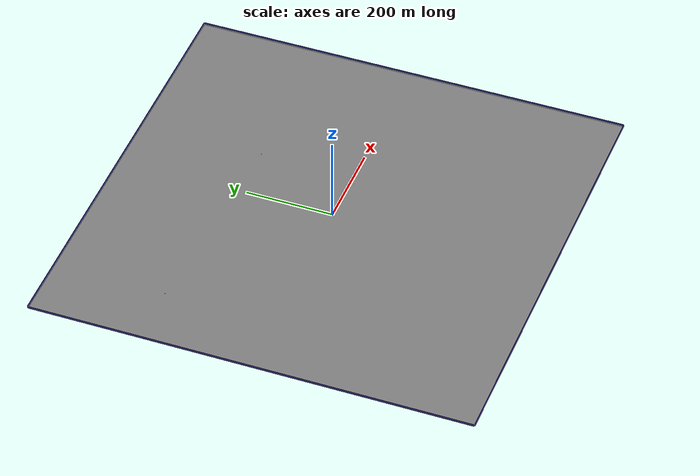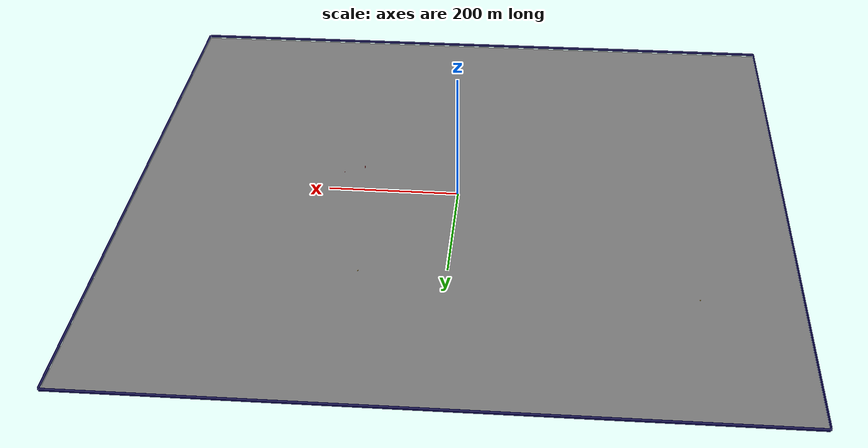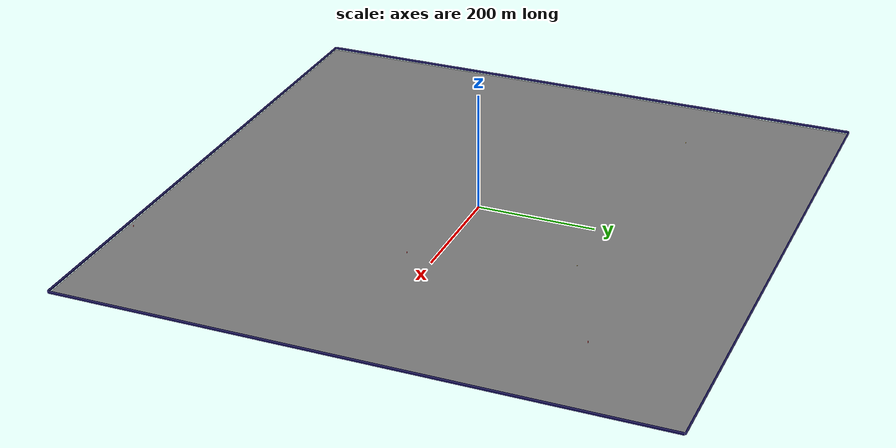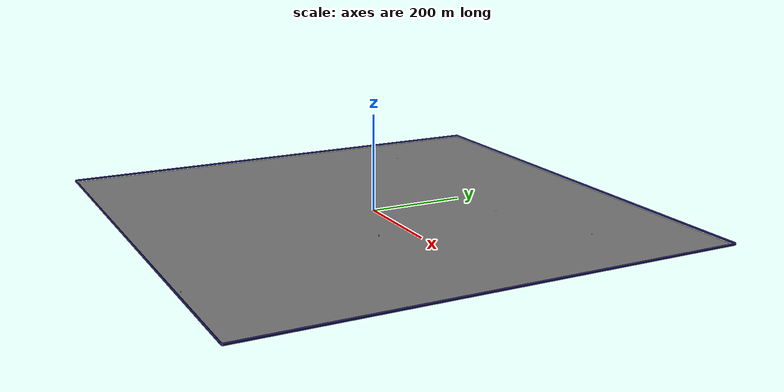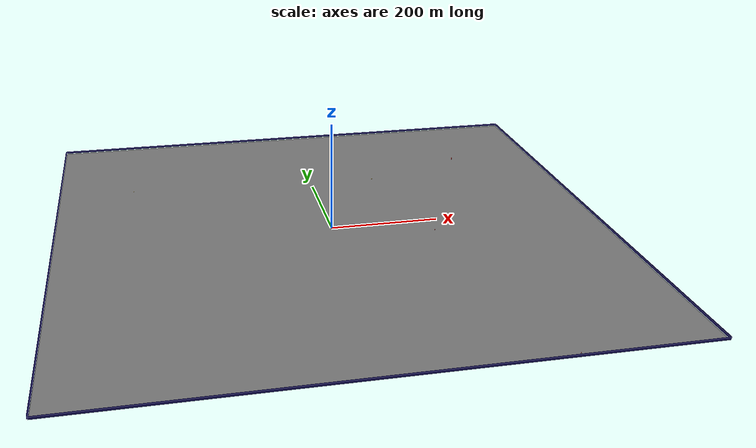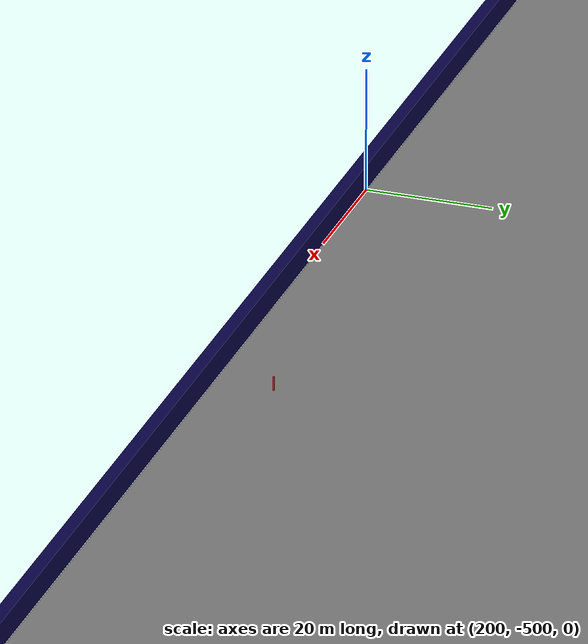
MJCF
<mujoco model="unnamed_model">
  <default>
    <default class="/" />
    <default class="border/" />
    <default class="border_1/" />
    <default class="border_2/" />
    <default class="border_3/" />
    <default class="agentplaceholder/" />
    <default class="placeholder_box/" />
    <default class="stone0/" />
    <default class="stone1/" />
    <default class="tree/" />
    <default class="tree_1/" />
  </default>
  <worldbody>
    <body name="border/">
      <body name="border/border" pos="0 501 2">
        <geom name="border/border_geom" class="border/" type="box" size="500 1 2" rgba="0.035000000000000003 0.016 0.28999999999999998 1" />
      </body>
    </body>
    <body name="border_1/">
      <body name="border_1/border" pos="0 -501 2">
        <geom name="border_1/border_geom" class="border_1/" type="box" size="500 1 2" rgba="0.035000000000000003 0.016 0.28999999999999998 1" />
      </body>
    </body>
    <body name="border_2/">
      <body name="border_2/border" pos="501 0 2">
        <geom name="border_2/border_geom" class="border_2/" type="box" size="1 500 2" rgba="0.035000000000000003 0.016 0.28999999999999998 1" />
      </body>
    </body>
    <body name="border_3/">
      <body name="border_3/border" pos="-501 0 2">
        <geom name="border_3/border_geom" class="border_3/" type="box" size="1 500 2" rgba="0.035000000000000003 0.016 0.28999999999999998 1" />
      </body>
    </body>
    <body euler="0 0 -120.52557508301291" name="agentplaceholder/">
      <joint name="agentplaceholder/boxagent_freeJoint/" class="/" type="free" />
      <body name="agentplaceholder/agentplaceholder" pos="-250 0 3" euler="0 0 0">
        <geom name="agentplaceholder/boxagent_geom" class="agentplaceholder/" type="box" size="0.5 0.5 0.5" rgba="0.94899999999999995 0.74509999999999998 0.1333 1" euler="0 0 0" />
      </body>
    </body>
    <body name="placeholder_box/">
      <body name="placeholder_box/placeholder_box" pos="-357.00594999999998 245.24220000000003 0.5" euler="0 0 -20.41448682353294">
        <geom name="placeholder_box/box_geom" class="placeholder_box/" type="box" size="0.5 0.5 0.5" rgba="0.94899999999999995 0.74509999999999998 0.1333 1" euler="0 0 0" />
      </body>
    </body>
    <body name="stone0/">
      <body name="stone0/stone0" pos="268.61464999999998 -490.90649999999999 0.10000000000000001" euler="0 0 -8.0884381336674664">
        <geom name="stone0/stone_geom" class="stone0/" type="box" size="0.10000000000000001 0.10000000000000001 2" rgba="1 0 0 1" />
      </body>
    </body>
    <body name="stone1/">
      <body name="stone1/stone1" pos="327.5806 302.71379999999999 0.10000000000000001" euler="0 0 16.478850685375818">
        <geom name="stone1/stone_geom" class="stone1/" type="box" size="0.10000000000000001 0.10000000000000001 2" rgba="1 0 0 1" />
      </body>
    </body>
    <body name="tree/">
      <body name="tree/tree" pos="183.26575 -47.911699999999996 0.10000000000000001" euler="0 0 102.83694339000004">
        <geom name="tree/tree_geom" class="tree/" type="box" size="0.10000000000000001 0.10000000000000001 2" rgba="1 0 0 1" />
      </body>
    </body>
    <body name="tree_1/">
      <body name="tree_1/tree" pos="153.52115000000001 -67.133500000000026 0.10000000000000001" euler="0 0 -46.889433827072935">
        <geom name="tree_1/tree_geom" class="tree_1/" type="box" size="0.10000000000000001 0.10000000000000001 2" rgba="1 0 0 1" />
      </body>
    </body>
    <geom name="base_plane" class="/" type="plane" size="500 500 0.10000000000000001" />
  </worldbody>
</mujoco>
